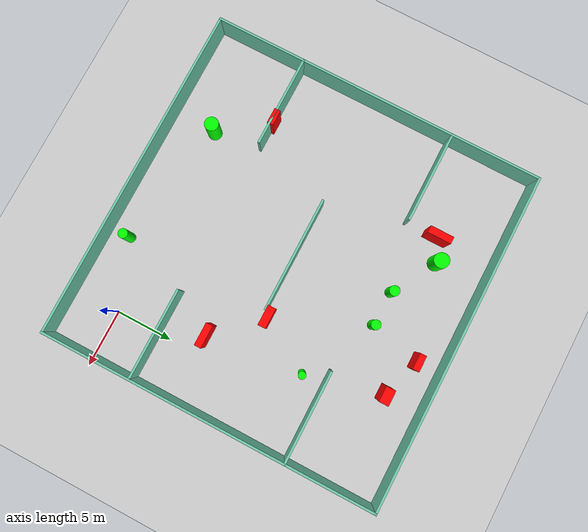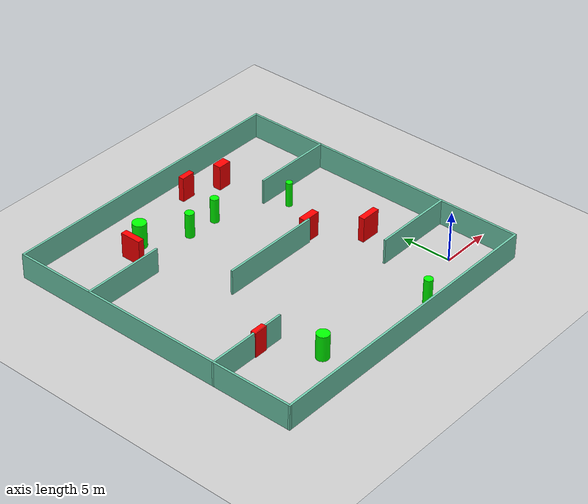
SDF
<sdf version="1.7">
 <world name="default">
  <light name="sun" type="directional">
   <pose>0 0 10 0 -0 0</pose>
   <diffuse>0.8 0.8 0.8 1</diffuse>
   <specular>0.2 0.2 0.2 1</specular>
   <attenuation>
    <range>1000</range>
    <constant>0.9</constant>
    <linear>0.01</linear>
    <quadratic>0.001</quadratic>
   </attenuation>
   <direction>-0.5 0.1 -0.9</direction>
   <spot><inner_angle>0</inner_angle><outer_angle>0</outer_angle><falloff>0</falloff></spot>
  </light>
  <model name="ground_plane">
   <static>1</static>
   <link name="link">
    <collision name="collision">
     <geometry><plane><normal>0 0 1</normal><size>100 100</size></plane></geometry>
     <surface>
      <contact><collide_bitmask>65535</collide_bitmask></contact>
      <friction><ode><mu>100</mu><mu2>50</mu2></ode></friction>
     </surface>
    </collision>
    <visual name="visual">
     <cast_shadows>0</cast_shadows>
     <geometry><plane><normal>0 0 1</normal><size>100 100</size></plane></geometry>
     <material>
      <script><uri>file://media/materials/scripts/gazebo.material</uri><name>Gazebo/Grey</name></script>
     </material>
    </visual>
   </link>
  </model>
  <gravity>0 0 -9.8</gravity>
  <magnetic_field>6e-06 2.3e-05 -4.2e-05</magnetic_field>
  <atmosphere type="adiabatic"/>
  <physics type="ode">
   <max_step_size>0.001</max_step_size>
   <real_time_factor>1</real_time_factor>
   <real_time_update_rate>1000</real_time_update_rate>
  </physics>
  <scene><ambient>0.4 0.4 0.4 1</ambient><background>0.7 0.7 0.7 1</background><shadows>1</shadows></scene>
  <spherical_coordinates>
   <surface_model>EARTH_WGS84</surface_model>
   <latitude_deg>0</latitude_deg>
   <longitude_deg>0</longitude_deg>
   <elevation>0</elevation>
   <heading_deg>0</heading_deg>
  </spherical_coordinates>
  <model name="my_base_walls">
   <link name="Wall_10">
    <collision name="Wall_10_Collision">
     <geometry><box><size>8.2 0.2 2.5</size></box></geometry>
     <pose>0 0 1.25 0 -0 0</pose>
    </collision>
    <visual name="Wall_10_Visual">
     <pose>0 0 1.25 0 -0 0</pose>
     <geometry><box><size>8.2 0.2 2.5</size></box></geometry>
     <material>
      <script><uri>file://media/materials/scripts/gazebo.material</uri><name>Gazebo/Grey</name></script>
      <ambient>0.435294 0.796078 0.67451 1</ambient>
     </material>
     <meta><layer>0</layer></meta>
    </visual>
    <pose>-11 -7 0 0 -0 0</pose>
   </link>
   <link name="Wall_12">
    <collision name="Wall_12_Collision">
     <geometry><box><size>8.2 0.2 2.5</size></box></geometry>
     <pose>0 0 1.25 0 -0 0</pose>
    </collision>
    <visual name="Wall_12_Visual">
     <pose>0 0 1.25 0 -0 0</pose>
     <geometry><box><size>8.2 0.2 2.5</size></box></geometry>
     <material>
      <script><uri>file://media/materials/scripts/gazebo.material</uri><name>Gazebo/Grey</name></script>
      <ambient>0.435294 0.796078 0.67451 1</ambient>
     </material>
     <meta><layer>0</layer></meta>
    </visual>
    <pose>-11 7 0 0 -0 0</pose>
   </link>
   <link name="Wall_14">
    <collision name="Wall_14_Collision">
     <geometry><box><size>8.2 0.2 2.5</size></box></geometry>
     <pose>0 0 1.25 0 -0 0</pose>
    </collision>
    <visual name="Wall_14_Visual">
     <pose>0 0 1.25 0 -0 0</pose>
     <geometry><box><size>8.2 0.2 2.5</size></box></geometry>
     <material>
      <script><uri>file://media/materials/scripts/gazebo.material</uri><name>Gazebo/Grey</name></script>
      <ambient>0.435294 0.796078 0.67451 1</ambient>
     </material>
     <meta><layer>0</layer></meta>
    </visual>
    <pose>11 7 0 0 -0 3.14159</pose>
   </link>
   <link name="Wall_16">
    <collision name="Wall_16_Collision">
     <geometry><box><size>10.2 0.2 2.5</size></box></geometry>
     <pose>0 0 1.25 0 -0 0</pose>
    </collision>
    <visual name="Wall_16_Visual">
     <pose>0 0 1.25 0 -0 0</pose>
     <geometry><box><size>10.2 0.2 2.5</size></box></geometry>
     <material>
      <script><uri>file://media/materials/scripts/gazebo.material</uri><name>Gazebo/Grey</name></script>
      <ambient>0.435294 0.796078 0.67451 1</ambient>
     </material>
     <meta><layer>0</layer></meta>
    </visual>
    <pose>0 0 0 0 -0 3.14159</pose>
   </link>
   <link name="Wall_2">
    <collision name="Wall_2_Collision">
     <geometry><box><size>30.2 0.2 2.5</size></box></geometry>
     <pose>0 0 1.25 0 -0 0</pose>
    </collision>
    <visual name="Wall_2_Visual">
     <pose>0 0 1.25 0 -0 0</pose>
     <geometry><box><size>30.2 0.2 2.5</size></box></geometry>
     <material>
      <script><uri>file://media/materials/scripts/gazebo.material</uri><name>Gazebo/Grey</name></script>
      <ambient>0.435294 0.796078 0.67451 1</ambient>
     </material>
     <meta><layer>0</layer></meta>
    </visual>
    <pose>0 -15 0 0 -0 3.14159</pose>
   </link>
   <link name="Wall_3">
    <collision name="Wall_3_Collision">
     <geometry><box><size>30.2 0.2 2.5</size></box></geometry>
     <pose>0 0 1.25 0 -0 0</pose>
    </collision>
    <visual name="Wall_3_Visual">
     <pose>0 0 1.25 0 -0 0</pose>
     <geometry><box><size>30.2 0.2 2.5</size></box></geometry>
     <material>
      <script><uri>file://media/materials/scripts/gazebo.material</uri><name>Gazebo/Grey</name></script>
      <ambient>0.435294 0.796078 0.67451 1</ambient>
     </material>
     <meta><layer>0</layer></meta>
    </visual>
    <pose>-15 0 0 0 -0 1.5708</pose>
   </link>
   <link name="Wall_4">
    <collision name="Wall_4_Collision">
     <geometry><box><size>30.2 0.2 2.5</size></box></geometry>
     <pose>0 0 1.25 0 -0 0</pose>
    </collision>
    <visual name="Wall_4_Visual">
     <pose>0 0 1.25 0 -0 0</pose>
     <geometry><box><size>30.2 0.2 2.5</size></box></geometry>
     <material>
      <script><uri>file://media/materials/scripts/gazebo.material</uri><name>Gazebo/Grey</name></script>
      <ambient>0.435294 0.796078 0.67451 1</ambient>
     </material>
     <meta><layer>0</layer></meta>
    </visual>
    <pose>0 15 0 0 -0 0</pose>
   </link>
   <link name="Wall_6">
    <collision name="Wall_6_Collision">
     <geometry><box><size>30.2 0.2 2.5</size></box></geometry>
     <pose>0 0 1.25 0 -0 0</pose>
    </collision>
    <visual name="Wall_6_Visual">
     <pose>0 0 1.25 0 -0 0</pose>
     <geometry><box><size>30.2 0.2 2.5</size></box></geometry>
     <material>
      <script><uri>file://media/materials/scripts/gazebo.material</uri><name>Gazebo/Grey</name></script>
      <ambient>0.435294 0.796078 0.67451 1</ambient>
     </material>
     <meta><layer>0</layer></meta>
    </visual>
    <pose>15 0 0 0 -0 1.5708</pose>
   </link>
   <link name="Wall_8">
    <collision name="Wall_8_Collision">
     <geometry><box><size>8.2 0.2 2.5</size></box></geometry>
     <pose>0 0 1.25 0 -0 0</pose>
    </collision>
    <visual name="Wall_8_Visual">
     <pose>0 0 1.25 0 -0 0</pose>
     <geometry><box><size>8.2 0.2 2.5</size></box></geometry>
     <material>
      <script><uri>file://media/materials/scripts/gazebo.material</uri><name>Gazebo/Grey</name></script>
      <ambient>0.435294 0.796078 0.67451 1</ambient>
     </material>
     <meta><layer>0</layer></meta>
    </visual>
    <pose>11 -7 0 0 -0 3.14159</pose>
   </link>
   <static>1</static>
   <pose>-11 11 0 0 -0 0</pose>
  </model>
  <model name="cylinder1">
   <static>1</static>
   <link name="link">
    <inertial>
     <mass>1</mass>
     <inertia><ixx>0.5</ixx><ixy>0</ixy><ixz>0</ixz><iyy>0.5</iyy><iyz>0</iyz><izz>1</izz></inertia>
    </inertial>
    <collision name="collision">
     <geometry><cylinder><radius>0.32580996653998034</radius><length>2.5</length></cylinder></geometry>
    </collision>
    <visual name="visual">
     <geometry><cylinder><radius>0.32580996653998034</radius><length>2.5</length></cylinder></geometry>
     <material>
      <ambient>0 1 0 1</ambient>
      <diffuse>0 1 0 1</diffuse>
      <specular>0.1 0.1 0.1 1</specular>
      <emissive>0 0 0 0</emissive>
     </material>
    </visual>
   </link>
   <pose>-2.712828827917683 16.058645696612587 1.25 0 0 0</pose>
  </model>
  <model name="cylinder2">
   <static>1</static>
   <link name="link">
    <inertial>
     <mass>1</mass>
     <inertia><ixx>0.5</ixx><ixy>0</ixy><ixz>0</ixz><iyy>0.5</iyy><iyz>0</iyz><izz>1</izz></inertia>
    </inertial>
    <collision name="collision">
     <geometry><cylinder><radius>0.6669439603893114</radius><length>2.5</length></cylinder></geometry>
    </collision>
    <visual name="visual">
     <geometry><cylinder><radius>0.6669439603893114</radius><length>2.5</length></cylinder></geometry>
     <material>
      <ambient>0 1 0 1</ambient>
      <diffuse>0 1 0 1</diffuse>
      <specular>0.1 0.1 0.1 1</specular>
      <emissive>0 0 0 0</emissive>
     </material>
    </visual>
   </link>
   <pose>-16.129130766773066 21.838912049681326 1.25 0 0 0</pose>
  </model>
  <model name="cylinder3">
   <static>1</static>
   <link name="link">
    <inertial>
     <mass>1</mass>
     <inertia><ixx>0.5</ixx><ixy>0</ixy><ixz>0</ixz><iyy>0.5</iyy><iyz>0</iyz><izz>1</izz></inertia>
    </inertial>
    <collision name="collision">
     <geometry><cylinder><radius>0.44422109776216634</radius><length>2.5</length></cylinder></geometry>
    </collision>
    <visual name="visual">
     <geometry><cylinder><radius>0.44422109776216634</radius><length>2.5</length></cylinder></geometry>
     <material>
      <ambient>0 1 0 1</ambient>
      <diffuse>0 1 0 1</diffuse>
      <specular>0.1 0.1 0.1 1</specular>
      <emissive>0 0 0 0</emissive>
     </material>
    </visual>
   </link>
   <pose>-12.146789019560092 19.558205001566723 1.25 0 0 0</pose>
  </model>
  <model name="cylinder4">
   <static>1</static>
   <link name="link">
    <inertial>
     <mass>1</mass>
     <inertia><ixx>0.5</ixx><ixy>0</ixy><ixz>0</ixz><iyy>0.5</iyy><iyz>0</iyz><izz>1</izz></inertia>
    </inertial>
    <collision name="collision">
     <geometry><cylinder><radius>0.6154218480193447</radius><length>2.5</length></cylinder></geometry>
    </collision>
    <visual name="visual">
     <geometry><cylinder><radius>0.6154218480193447</radius><length>2.5</length></cylinder></geometry>
     <material>
      <ambient>0 1 0 1</ambient>
      <diffuse>0 1 0 1</diffuse>
      <specular>0.1 0.1 0.1 1</specular>
      <emissive>0 0 0 0</emissive>
     </material>
    </visual>
   </link>
   <pose>-17.48629965632062 -0.23538304135706722 1.25 0 0 0</pose>
  </model>
  <model name="cylinder5">
   <static>1</static>
   <link name="link">
    <inertial>
     <mass>1</mass>
     <inertia><ixx>0.5</ixx><ixy>0</ixy><ixz>0</ixz><iyy>0.5</iyy><iyz>0</iyz><izz>1</izz></inertia>
    </inertial>
    <collision name="collision">
     <geometry><cylinder><radius>0.4194433818199562</radius><length>2.5</length></cylinder></geometry>
    </collision>
    <visual name="visual">
     <geometry><cylinder><radius>0.4194433818199562</radius><length>2.5</length></cylinder></geometry>
     <material>
      <ambient>0 1 0 1</ambient>
      <diffuse>0 1 0 1</diffuse>
      <specular>0.1 0.1 0.1 1</specular>
      <emissive>0 0 0 0</emissive>
     </material>
    </visual>
   </link>
   <pose>-9.006614891264151 19.45406039343968 1.25 0 0 0</pose>
  </model>
  <model name="cylinder6">
   <static>1</static>
   <link name="link">
    <inertial>
     <mass>1</mass>
     <inertia><ixx>0.5</ixx><ixy>0</ixy><ixz>0</ixz><iyy>0.5</iyy><iyz>0</iyz><izz>1</izz></inertia>
    </inertial>
    <collision name="collision">
     <geometry><cylinder><radius>0.41757190791414</radius><length>2.5</length></cylinder></geometry>
    </collision>
    <visual name="visual">
     <geometry><cylinder><radius>0.41757190791414</radius><length>2.5</length></cylinder></geometry>
     <material>
      <ambient>0 1 0 1</ambient>
      <diffuse>0 1 0 1</diffuse>
      <specular>0.1 0.1 0.1 1</specular>
      <emissive>0 0 0 0</emissive>
     </material>
    </visual>
   </link>
   <pose>-6.006226491073759 -2.2024064526514238 1.25 0 0 0</pose>
  </model>
  <model name="box1">
   <static>1</static>
   <link name="link">
    <inertial>
     <mass>1</mass>
     <inertia><ixx>0.083</ixx><ixy>0</ixy><ixz>0</ixz><iyy>0.083</iyy><iyz>0</iyz><izz>0.083</izz></inertia>
    </inertial>
    <collision name="collision">
     <geometry><box><size>1.4197616850915602 0.5678681949831468 2.5</size></box></geometry>
    </collision>
    <visual name="visual">
     <geometry><box><size>1.4197616850915602 0.5678681949831468 2.5</size></box></geometry>
     <material>
      <ambient>1 0 0 1</ambient>
      <diffuse>1 0 0 1</diffuse>
      <specular>0.1 0.1 0.1 1</specular>
      <emissive>0 0 0 0</emissive>
     </material>
    </visual>
    <sensor name="my_contact" type="contact">
     <contact><collision>box_collision</collision><topic>__default_topic__</topic></contact>
    </sensor>
   </link>
   <pose>-7.956132411472154 23.885210356330322 1.25 0 0 0</pose>
  </model>
  <model name="box2">
   <static>1</static>
   <link name="link">
    <inertial>
     <mass>1</mass>
     <inertia><ixx>0.083</ixx><ixy>0</ixy><ixz>0</ixz><iyy>0.083</iyy><iyz>0</iyz><izz>0.083</izz></inertia>
    </inertial>
    <collision name="collision">
     <geometry><box><size>1.8078464324495733 0.708357238991284 2.5</size></box></geometry>
    </collision>
    <visual name="visual">
     <geometry><box><size>1.8078464324495733 0.708357238991284 2.5</size></box></geometry>
     <material>
      <ambient>1 0 0 1</ambient>
      <diffuse>1 0 0 1</diffuse>
      <specular>0.1 0.1 0.1 1</specular>
      <emissive>0 0 0 0</emissive>
     </material>
    </visual>
    <sensor name="my_contact" type="contact">
     <contact><collision>box_collision</collision><topic>__default_topic__</topic></contact>
    </sensor>
   </link>
   <pose>-5.496071941120448 11.39262301790361 1.25 0 0 0</pose>
  </model>
  <model name="box3">
   <static>1</static>
   <link name="link">
    <inertial>
     <mass>1</mass>
     <inertia><ixx>0.083</ixx><ixy>0</ixy><ixz>0</ixz><iyy>0.083</iyy><iyz>0</iyz><izz>0.083</izz></inertia>
    </inertial>
    <collision name="collision">
     <geometry><box><size>0.6303657426285328 2.0908824497129164 2.5</size></box></geometry>
    </collision>
    <visual name="visual">
     <geometry><box><size>0.6303657426285328 2.0908824497129164 2.5</size></box></geometry>
     <material>
      <ambient>1 0 0 1</ambient>
      <diffuse>1 0 0 1</diffuse>
      <specular>0.1 0.1 0.1 1</specular>
      <emissive>0 0 0 0</emissive>
     </material>
    </visual>
    <sensor name="my_contact" type="contact">
     <contact><collision>box_collision</collision><topic>__default_topic__</topic></contact>
    </sensor>
   </link>
   <pose>-17.994880868994066 20.843713803046843 1.25 0 0 0</pose>
  </model>
  <model name="box4">
   <static>1</static>
   <link name="link">
    <inertial>
     <mass>1</mass>
     <inertia><ixx>0.083</ixx><ixy>0</ixy><ixz>0</ixz><iyy>0.083</iyy><iyz>0</iyz><izz>0.083</izz></inertia>
    </inertial>
    <collision name="collision">
     <geometry><box><size>2.021779965164842 0.6072712859642526 2.5</size></box></geometry>
    </collision>
    <visual name="visual">
     <geometry><box><size>2.021779965164842 0.6072712859642526 2.5</size></box></geometry>
     <material>
      <ambient>1 0 0 1</ambient>
      <diffuse>1 0 0 1</diffuse>
      <specular>0.1 0.1 0.1 1</specular>
      <emissive>0 0 0 0</emissive>
     </material>
    </visual>
    <sensor name="my_contact" type="contact">
     <contact><collision>box_collision</collision><topic>__default_topic__</topic></contact>
    </sensor>
   </link>
   <pose>-1.8215487559074859 7.600932883129868 1.25 0 0 0</pose>
  </model>
  <model name="box5">
   <static>1</static>
   <link name="link">
    <inertial>
     <mass>1</mass>
     <inertia><ixx>0.083</ixx><ixy>0</ixy><ixz>0</ixz><iyy>0.083</iyy><iyz>0</iyz><izz>0.083</izz></inertia>
    </inertial>
    <collision name="collision">
     <geometry><box><size>1.3506655826371707 0.5483214302350252 2.5</size></box></geometry>
    </collision>
    <visual name="visual">
     <geometry><box><size>1.3506655826371707 0.5483214302350252 2.5</size></box></geometry>
     <material>
      <ambient>1 0 0 1</ambient>
      <diffuse>1 0 0 1</diffuse>
      <specular>0.1 0.1 0.1 1</specular>
      <emissive>0 0 0 0</emissive>
     </material>
    </visual>
    <sensor name="my_contact" type="contact">
     <contact><collision>box_collision</collision><topic>__default_topic__</topic></contact>
    </sensor>
   </link>
   <pose>-20.460791246675655 4.08082915572991 1.25 0 0 0</pose>
  </model>
  <model name="box6">
   <static>1</static>
   <link name="link">
    <inertial>
     <mass>1</mass>
     <inertia><ixx>0.083</ixx><ixy>0</ixy><ixz>0</ixz><iyy>0.083</iyy><iyz>0</iyz><izz>0.083</izz></inertia>
    </inertial>
    <collision name="collision">
     <geometry><box><size>1.3689063138681905 0.8562348354052131 2.5</size></box></geometry>
    </collision>
    <visual name="visual">
     <geometry><box><size>1.3689063138681905 0.8562348354052131 2.5</size></box></geometry>
     <material>
      <ambient>1 0 0 1</ambient>
      <diffuse>1 0 0 1</diffuse>
      <specular>0.1 0.1 0.1 1</specular>
      <emissive>0 0 0 0</emissive>
     </material>
    </visual>
    <sensor name="my_contact" type="contact">
     <contact><collision>box_collision</collision><topic>__default_topic__</topic></contact>
    </sensor>
   </link>
   <pose>-4.41748223614384 22.78106125613158 1.25 0 0 0</pose>
  </model>
 </world>
</sdf>
